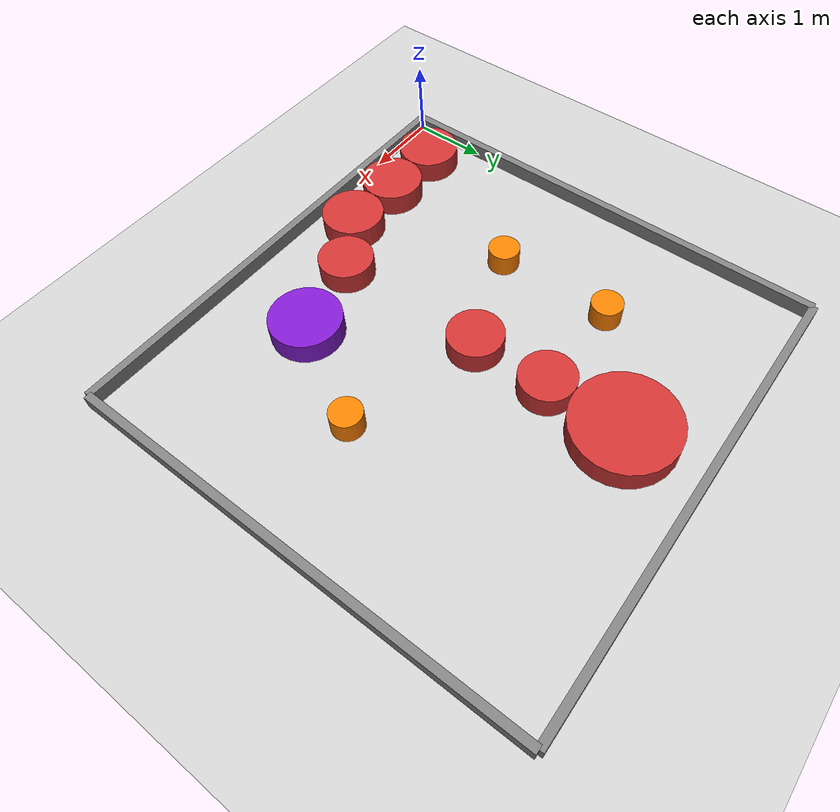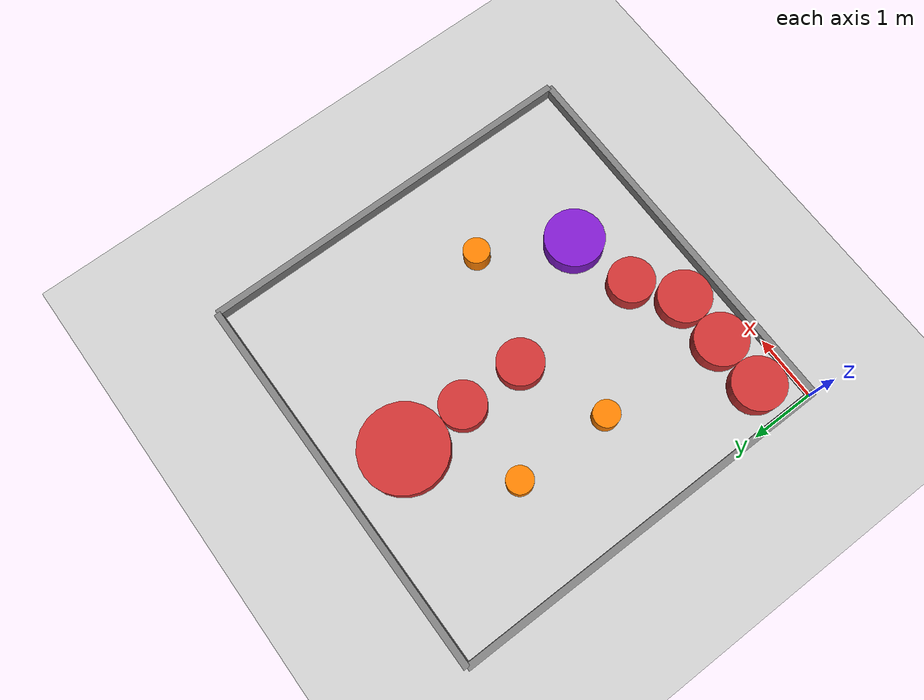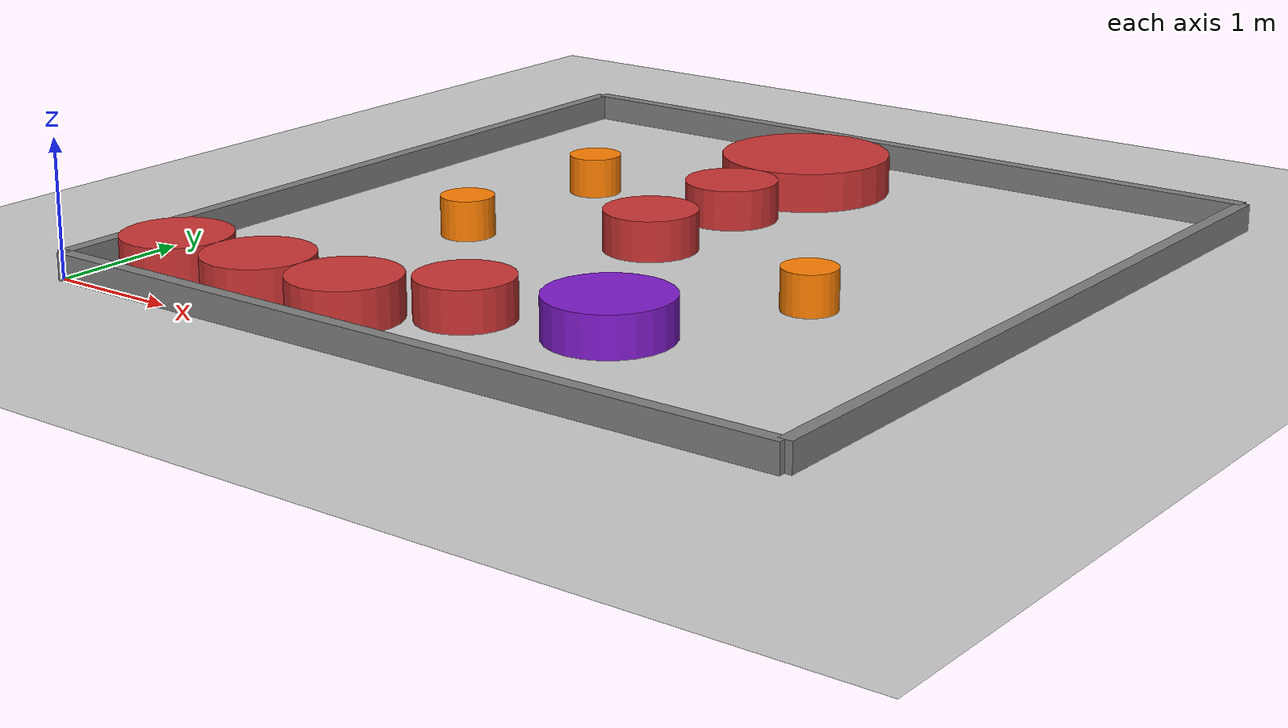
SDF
<?xml version="1.0" ?>
<sdf version="1.6">
  <world name="planning_world">

    <include>
      <uri>model://ground_plane</uri>
    </include>
    <include>
      <uri>model://sun</uri>
    </include>

    <!-- Bottom wall -->
    <model name="wall_bottom">
      <static>true</static>
      <pose>3.0 0.0 0.1 0 0 0</pose>
      <link name="link">
        <collision name="collision">
          <geometry><box><size>6.0 0.1 0.2</size></box></geometry>
        </collision>
        <visual name="visual">
          <geometry><box><size>6.0 0.1 0.2</size></box></geometry>
          <material><ambient>0.5 0.5 0.5 1</ambient></material>
        </visual>
      </link>
    </model>

    <!-- Top wall -->
    <model name="wall_top">
      <static>true</static>
      <pose>3.0 6.0 0.1 0 0 0</pose>
      <link name="link">
        <collision name="collision">
          <geometry><box><size>6.0 0.1 0.2</size></box></geometry>
        </collision>
        <visual name="visual">
          <geometry><box><size>6.0 0.1 0.2</size></box></geometry>
          <material><ambient>0.5 0.5 0.5 1</ambient></material>
        </visual>
      </link>
    </model>

    <!-- Left wall -->
    <model name="wall_left">
      <static>true</static>
      <pose>0.0 3.0 0.1 0 0 0</pose>
      <link name="link">
        <collision name="collision">
          <geometry><box><size>0.1 6.0 0.2</size></box></geometry>
        </collision>
        <visual name="visual">
          <geometry><box><size>0.1 6.0 0.2</size></box></geometry>
          <material><ambient>0.5 0.5 0.5 1</ambient></material>
        </visual>
      </link>
    </model>

    <!-- Right wall -->
    <model name="wall_right">
      <static>true</static>
      <pose>6.0 3.0 0.1 0 0 0</pose>
      <link name="link">
        <collision name="collision">
          <geometry><box><size>0.1 6.0 0.2</size></box></geometry>
        </collision>
        <visual name="visual">
          <geometry><box><size>0.1 6.0 0.2</size></box></geometry>
          <material><ambient>0.5 0.5 0.5 1</ambient></material>
        </visual>
      </link>
    </model>

    <!-- Wall top -->
    <model name="obstacle_1">
      <static>true</static>
      <pose>2.8 5.0 0.15 0 0 0</pose>
      <link name="link">
        <collision name="collision">
          <geometry><cylinder><radius>0.65</radius><length>0.3</length></cylinder></geometry>
        </collision>
        <visual name="visual">
          <geometry><cylinder><radius>0.65</radius><length>0.3</length></cylinder></geometry>
          <material><ambient>0.8 0.2 0.2 1</ambient></material>
        </visual>
      </link>
    </model>

    <!-- Wall upper-mid -->
    <model name="obstacle_2">
      <static>true</static>
      <pose>2.8 4.0 0.15 0 0 0</pose>
      <link name="link">
        <collision name="collision">
          <geometry><cylinder><radius>0.35</radius><length>0.3</length></cylinder></geometry>
        </collision>
        <visual name="visual">
          <geometry><cylinder><radius>0.35</radius><length>0.3</length></cylinder></geometry>
          <material><ambient>0.8 0.2 0.2 1</ambient></material>
        </visual>
      </link>
    </model>

    <!-- Wall lower-mid — diagonal crosses here -->
    <model name="obstacle_3">
      <static>true</static>
      <pose>2.8 3.0 0.15 0 0 0</pose>
      <link name="link">
        <collision name="collision">
          <geometry><cylinder><radius>0.35</radius><length>0.3</length></cylinder></geometry>
        </collision>
        <visual name="visual">
          <geometry><cylinder><radius>0.35</radius><length>0.3</length></cylinder></geometry>
          <material><ambient>0.8 0.2 0.2 1</ambient></material>
        </visual>
      </link>
    </model>

    <!-- Wall bottom — gap above this at y≈2.0 -->
    <model name="obstacle_4">
      <static>true</static>
      <pose>2.8 1.0 0.15 0 0 0</pose>
      <link name="link">
        <collision name="collision">
          <geometry><cylinder><radius>0.35</radius><length>0.3</length></cylinder></geometry>
        </collision>
        <visual name="visual">
          <geometry><cylinder><radius>0.35</radius><length>0.3</length></cylinder></geometry>
          <material><ambient>0.8 0.2 0.2 1</ambient></material>
        </visual>
      </link>
    </model>

    <!-- Bottom wall LEFT — replaces old (1.0, 1.0) circle -->
    <model name="obstacle_5a">
      <static>true</static>
      <pose>0.55 0.55 0.15 0 0 0</pose>
      <link name="link">
        <collision name="collision">
          <geometry><cylinder><radius>0.40</radius><length>0.3</length></cylinder></geometry>
        </collision>
        <visual name="visual">
          <geometry><cylinder><radius>0.40</radius><length>0.3</length></cylinder></geometry>
          <material><ambient>0.8 0.2 0.2 1</ambient></material>
        </visual>
      </link>
    </model>

    <!-- Bottom wall MID -->
    <model name="obstacle_5b">
      <static>true</static>
      <pose>1.35 0.55 0.15 0 0 0</pose>
      <link name="link">
        <collision name="collision">
          <geometry><cylinder><radius>0.40</radius><length>0.3</length></cylinder></geometry>
        </collision>
        <visual name="visual">
          <geometry><cylinder><radius>0.40</radius><length>0.3</length></cylinder></geometry>
          <material><ambient>0.8 0.2 0.2 1</ambient></material>
        </visual>
      </link>
    </model>

    <!-- Bottom wall RIGHT -->
    <model name="obstacle_5c">
      <static>true</static>
      <pose>2.15 0.55 0.15 0 0 0</pose>
      <link name="link">
        <collision name="collision">
          <geometry><cylinder><radius>0.40</radius><length>0.3</length></cylinder></geometry>
        </collision>
        <visual name="visual">
          <geometry><cylinder><radius>0.40</radius><length>0.3</length></cylinder></geometry>
          <material><ambient>0.8 0.2 0.2 1</ambient></material>
        </visual>
      </link>
    </model>

    <!-- Guardian — purple, forces second routing decision after gap -->
    <model name="obstacle_6">
      <static>true</static>
      <pose>3.8 1.25 0.15 0 0 0</pose>
      <link name="link">
        <collision name="collision">
          <geometry><cylinder><radius>0.45</radius><length>0.3</length></cylinder></geometry>
        </collision>
        <visual name="visual">
          <geometry><cylinder><radius>0.45</radius><length>0.3</length></cylinder></geometry>
          <material><ambient>0.5 0.1 0.8 1</ambient></material>
        </visual>
      </link>
    </model>

    <!-- Moving obs 1 — horizontal gap crosser -->
    <model name="moving_obs_1">
      <static>false</static>
      <pose>1.5 2.5 0.15 0 0 0</pose>
      <link name="link">
        <inertial><mass>1.0</mass></inertial>
        <collision name="collision">
          <geometry><cylinder><radius>0.20</radius><length>0.3</length></cylinder></geometry>
        </collision>
        <visual name="visual">
          <geometry><cylinder><radius>0.20</radius><length>0.3</length></cylinder></geometry>
          <material><ambient>1.0 0.5 0.0 1</ambient></material>
        </visual>
      </link>
      <plugin name="moving_obs_1_plugin" filename="libgazebo_ros_planar_move.so">
        <ros>
          <remapping>cmd_vel:=moving_obs_1/cmd_vel</remapping>
          <remapping>odom:=moving_obs_1/odom</remapping>
        </ros>
        <update_rate>10</update_rate>
        <publish_rate>10</publish_rate>
      </plugin>
    </model>

    <!-- Moving obs 2 — vertical approach pacer -->
    <model name="moving_obs_2">
      <static>false</static>
      <pose>1.5 4.0 0.15 0 0 0</pose>
      <link name="link">
        <inertial><mass>1.0</mass></inertial>
        <collision name="collision">
          <geometry><cylinder><radius>0.20</radius><length>0.3</length></cylinder></geometry>
        </collision>
        <visual name="visual">
          <geometry><cylinder><radius>0.20</radius><length>0.3</length></cylinder></geometry>
          <material><ambient>1.0 0.5 0.0 1</ambient></material>
        </visual>
      </link>
      <plugin name="moving_obs_2_plugin" filename="libgazebo_ros_planar_move.so">
        <ros>
          <remapping>cmd_vel:=moving_obs_2/cmd_vel</remapping>
          <remapping>odom:=moving_obs_2/odom</remapping>
        </ros>
        <update_rate>10</update_rate>
        <publish_rate>10</publish_rate>
      </plugin>
    </model>

    <!-- Moving obs 3 — diagonal exit chaser -->
    <model name="moving_obs_3">
      <static>false</static>
      <pose>4.5 2.5 0.15 0 0 0</pose>
      <link name="link">
        <inertial><mass>1.0</mass></inertial>
        <collision name="collision">
          <geometry><cylinder><radius>0.20</radius><length>0.3</length></cylinder></geometry>
        </collision>
        <visual name="visual">
          <geometry><cylinder><radius>0.20</radius><length>0.3</length></cylinder></geometry>
          <material><ambient>1.0 0.5 0.0 1</ambient></material>
        </visual>
      </link>
      <plugin name="moving_obs_3_plugin" filename="libgazebo_ros_planar_move.so">
        <ros>
          <remapping>cmd_vel:=moving_obs_3/cmd_vel</remapping>
          <remapping>odom:=moving_obs_3/odom</remapping>
        </ros>
        <update_rate>10</update_rate>
        <publish_rate>10</publish_rate>
      </plugin>
    </model>

  </world>
</sdf>
